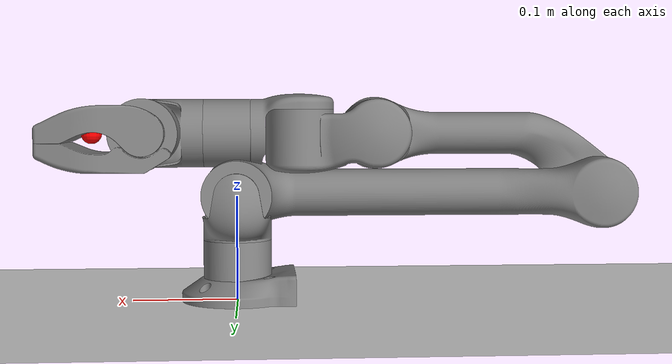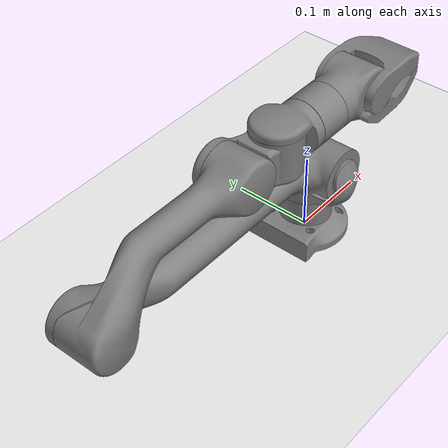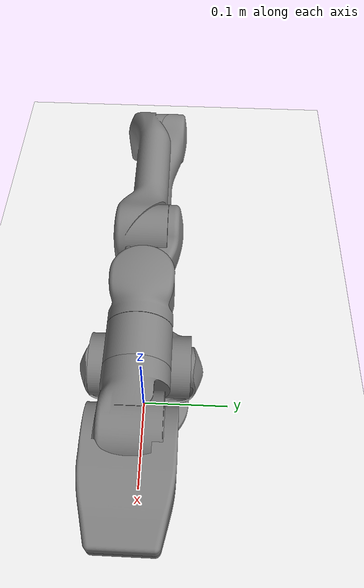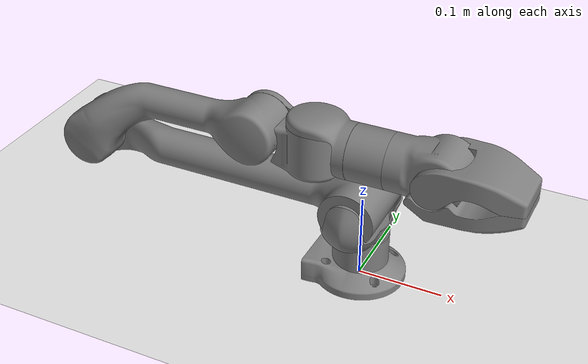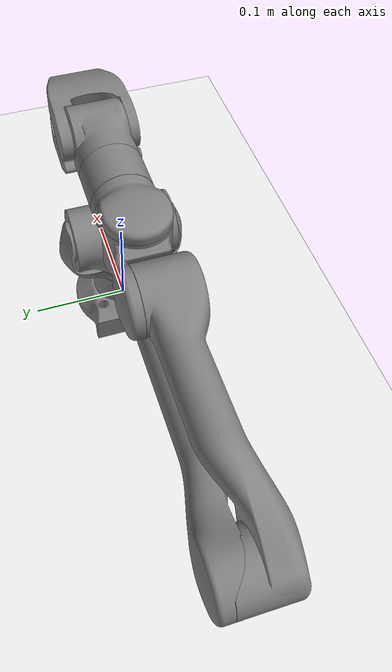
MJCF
<mujoco model="z1 scene">
      <include file="z1.xml"/>

      <statistic center="0 0 0.1" extent="0.8"/>

      <visual>
            <headlight diffuse="0.4 0.4 0.4" ambient="0.25 0.25 0.25" specular="0.25 0.25 0.25"/>
            <rgba haze="0.99 0.99 0.99 1"/>
            <global azimuth="-130" elevation="-20"/>
      </visual>
      <asset>
            <texture
                  type="skybox"
                  builtin="gradient"
                  rgb1="0.99 0.99 0.99"
                  rgb2="0.99 0.99 0.99"
                  width="512"
                  height="3072"
            />
            <texture
                  type="2d"
                  name="groundplane"
                  builtin="checker"
                  mark="edge"
                  rgb1="0.93 0.93 0.93"
                  rgb2="0.93 0.93 0.93"
                  markrgb="0 0 0"
                  width="250"
                  height="250"
            />
            <material name="groundplane" texture="groundplane" texuniform="true" texrepeat="5 5" reflectance="0.0"/>

      </asset>

      <worldbody>
            <light pos="0 0 5.0" dir="0 0 -1" directional="true" castshadow="false"/>

            <geom name="floor" size="0 0 0.05" type="plane" material="groundplane"/>
      </worldbody>
</mujoco>

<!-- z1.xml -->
<mujoco model="z1">
  <compiler angle="radian"/>

  <option integrator="implicitfast" timestep="0.005"/>

  <default>
    <default class="z1">
      <default class="visual">
        <geom type="mesh" group="2" contype="0" conaffinity="0"/>
      </default>
      <default class="collision">
        <geom type="cylinder" group="3" mass="0" density="0"/>
        <default class="z1_gripper_stator_collision">
          <geom pos="0.051 0 0" type="mesh"/>
        </default>
        <default class="z1_gripper_stator_pad_collision_1">
          <geom type="box" size="0.014 0.015 0.004" pos="0.186 -0.015 -0.0125"/>
        </default>
        <default class="z1_gripper_stator_pad_collision_2">
          <geom type="box" size="0.014 0.015 0.004" pos="0.186 0.015 -0.0125"/>
        </default>
        <default class="z1_gripper_mover_collision">
          <geom type="mesh"/>
        </default>
        <default class="z1_gripper_mover_pad_collision_1">
          <geom type="box" size="0.014 0.015 0.004" pos="0.086 -0.015 -0.0055"/>
        </default>
        <default class="z1_gripper_mover_pad_collision_2">
          <geom type="box" size="0.014 0.015 0.004" pos="0.086 0.015 -0.0055"/>
        </default>
      </default>
    </default>
  </default>

  <asset>
    <mesh file="assets/z1_Link00.stl"/>
    <mesh file="assets/z1_Link01.stl"/>
    <mesh file="assets/z1_Link02.stl"/>
    <mesh file="assets/z1_Link03.stl"/>
    <mesh file="assets/z1_Link04.stl"/>
    <mesh file="assets/z1_Link05.stl"/>
    <mesh file="assets/z1_Link06.stl"/>
    <mesh file="assets/z1_GripperStator.stl"/>
    <mesh file="assets/z1_GripperStator_col_1.stl"/>
    <mesh file="assets/z1_GripperStator_col_2.stl"/>
    <mesh file="assets/z1_GripperStator_col_3.stl"/>
    <mesh file="assets/z1_GripperStator_col_4.stl"/>
    <mesh file="assets/z1_GripperStator_col_5.stl"/>
    <mesh file="assets/z1_GripperStator_col_6.stl"/>
    <mesh file="assets/z1_GripperMover.stl"/>
    <mesh file="assets/z1_GripperMover_col_1.stl"/>
    <mesh file="assets/z1_GripperMover_col_2.stl"/>
    <mesh file="assets/z1_GripperMover_col_3.stl"/>
    <mesh file="assets/z1_GripperMover_col_4.stl"/>
    <mesh file="assets/z1_GripperMover_col_5.stl"/>
  </asset>

  <worldbody>
    <body name="link00" childclass="z1" pos="0 0 0">
      <inertial pos="-0.00334984 -0.00013615 0.0249584" quat="-0.00692194 0.682592 0.00133293 0.730766" mass="0.472475"
        diaginertia="0.000531375 0.000415207 0.000378658"/>
      <geom class="visual" mesh="z1_Link00"/>
      <geom size="0.0325 0.0255" pos="0 0 0.0255" class="collision"/>
      <body name="link01" pos="0 0 0.0585">
        <inertial pos="2.47e-06 -0.00025198 0.0231717" quat="0.708578 0.705633 0.000281462 -0.000355927" mass="0.673326"
          diaginertia="0.00128328 0.000839362 0.000719308"/>
        <joint name="joint1" axis="0 0 1" range="-2.61799 2.61799" armature="0.1513" frictionloss="2.1582" damping="4.6844"/>
        <geom class="visual" mesh="z1_Link01"/>
        <body name="link02" pos="0 0 0.045">
          <inertial pos="-0.110126 0.00240029 0.00158266" quat="0.00748058 0.707092 -0.0114473 0.70699" mass="1.19132"
            diaginertia="0.0246612 0.0243113 0.00100468"/>
          <joint name="joint2" axis="0 1 0" range="0 2.96706" armature="0.0569" frictionloss="4.4866" damping="7.0000"/>
          <geom class="visual" mesh="z1_Link02"/>
          <geom size="0.0325 0.051" quat="1 1 0 0" class="collision"/>
          <geom size="0.0225 0.1175" pos="-0.1625 0 0" quat="1 0 1 0" class="collision"/>
          <geom size="0.0325 0.0255" pos="-0.35 0 0" quat="1 1 0 0" class="collision"/>
          <body name="link03" pos="-0.35 0 0">
            <inertial pos="0.106092 -0.00541815 0.0347638" quat="0.540557 0.443575 0.426319 0.573839" mass="0.839409"
              diaginertia="0.00954365 0.00938711 0.000558432"/>
            <joint name="joint3" axis="0 1 0" range="-2.87979 0" armature="0.1984" frictionloss="2.6990" damping="3.4930"/>
            <geom class="visual" mesh="z1_Link03"/>
            <geom size="0.02 0.058" pos="0.128 0 0.055" quat="1 0 1 0" class="collision"/>
            <geom size="0.0325 0.0295" pos="0.2205 0 0.055" quat="0.5 -0.5 0.5 0.5" class="collision"/>
            <body name="link04" pos="0.218 0 0.057">
              <inertial pos="0.0436668 0.00364738 -0.00170192" quat="0.0390835 0.726445 -0.0526787 0.684087"
                mass="0.564046" diaginertia="0.000981656 0.00094053 0.000302655"/>
              <joint name="joint4" axis="0 1 0" range="-1.51844 1.51844" armature="0.0099" frictionloss="2.7345" damping="5.0049"/>
              <geom class="visual" mesh="z1_Link04"/>
              <geom size="0.0325 0.0335" pos="0.072 0 0" class="collision"/>
              <body name="link05" pos="0.07 0 0">
                <inertial pos="0.0312153 0 0.00646316" quat="0.462205 0.535209 0.53785 0.45895" mass="0.389385"
                  diaginertia="0.000558961 0.000547317 0.000167332"/>
                <joint name="joint5" axis="0 0 1" range="-1.3439 1.3439" armature="0.0865" frictionloss="2.6727" damping="4.4578"/>
                <geom class="visual" mesh="z1_Link05"/>
                <body name="link06" pos="0.0492 0 0">
                  <inertial pos="0.0241569 -0.00017355 -0.00143876" quat="0.998779 0.0457735 -0.00663717 0.0173548"
                    mass="0.288758" diaginertia="0.00018333 0.000147464 0.000146786"/>
                  <joint name="joint6" axis="1 0 0" range="-2.79253 2.79253" armature="0.1382" frictionloss="2.1069" damping="4.2921"/>
                  <geom class="visual" mesh="z1_Link06"/>
                  <geom size="0.0325 0.0255" pos="0.0255 0 0" quat="1 0 1 0" class="collision"/>
                  <site name="attachment_site" size="0.01" pos="0.15 0 0" rgba="1 0 0 1" group="1"/>

                  <geom pos="0.051 0 0" type="mesh" mesh="z1_GripperStator" class="visual"/>
                  <geom class="z1_gripper_stator_collision" mesh="z1_GripperStator_col_1"/>
                  <geom class="z1_gripper_stator_collision" mesh="z1_GripperStator_col_2"/>
                  <geom class="z1_gripper_stator_collision" mesh="z1_GripperStator_col_3"/>
                  <geom class="z1_gripper_stator_collision" mesh="z1_GripperStator_col_4"/>
                  <geom class="z1_gripper_stator_collision" mesh="z1_GripperStator_col_5"/>
                  <geom class="z1_gripper_stator_collision" mesh="z1_GripperStator_col_6"/>
                  <geom class="z1_gripper_stator_pad_collision_1"/>
                  <geom class="z1_gripper_stator_pad_collision_2"/>
                  <body name="gripperMover" pos="0.1 0 0">
                    <inertial pos="0.0132063 0.00476708 0.00380534" quat="0.0631093 0.669067 -0.0615783 0.737953"
                      mass="0.276213" diaginertia="0.000359044 0.000270888 0.000172378"/>
                    <joint name="jointGripper" axis="0 1 0" range="-1.51844 0.05" armature="0.0445" frictionloss="5.9808" damping="2.3799"/>
                    <geom type="mesh" mesh="z1_GripperMover" class="visual"/>
                    <geom class="z1_gripper_mover_collision" mesh="z1_GripperMover_col_1"/>
                    <geom class="z1_gripper_mover_collision" mesh="z1_GripperMover_col_2"/>
                    <geom class="z1_gripper_mover_collision" mesh="z1_GripperMover_col_3"/>
                    <geom class="z1_gripper_mover_collision" mesh="z1_GripperMover_col_4"/>
                    <geom class="z1_gripper_mover_collision" mesh="z1_GripperMover_col_5"/>
                    <geom class="z1_gripper_mover_pad_collision_1"/>
                    <geom class="z1_gripper_mover_pad_collision_2"/>
                  </body>
                </body>
              </body>
            </body>
          </body>
        </body>
      </body>
    </body>
  </worldbody>

  <actuator>
      <motor name="motor1"   joint="joint1" ctrlrange="-30.0 30.0"/>
      <motor name="motor2"   joint="joint2" ctrlrange="-60.0 60.0"/>
      <motor name="motor3"   joint="joint3" ctrlrange="-30.0 30.0"/>
      <motor name="motor4"   joint="joint4" ctrlrange="-30.0 30.0"/>
      <motor name="motor5"   joint="joint5" ctrlrange="-30.0 30.0"/>
      <motor name="motor6"   joint="joint6" ctrlrange="-30.0 30.0"/>
      <motor name="motorGripper" joint="jointGripper" ctrlrange="-10 10"/>
  </actuator>

  <sensor>
    <jointpos name="joint1_pos" joint="joint1"/>
    <jointpos name="joint2_pos" joint="joint2"/>
    <jointpos name="joint3_pos" joint="joint3"/>
    <jointpos name="joint4_pos" joint="joint4"/>
    <jointpos name="joint5_pos" joint="joint5"/>
    <jointpos name="joint6_pos" joint="joint6"/>
    <jointpos name="jointGripper_pos" joint="jointGripper"/>
  </sensor>

  <keyframe>
    <key name="home" qpos="0 0. -0. -0. 0 0 0.06" ctrl="0 0. -0. -0. 0 0 0"/>
    <key name="sys_id_1" qpos="0.2 0.2 -0.5 0.2 0.2 0.2 0.1" ctrl="0 0. 0. 0. 0 0 0"/>
    <key name="sys_id_2" qpos="0.9 0.9 -1.0 0.9 0.9 0.9 -1.0" ctrl="0 0. 0. 0. 0 0 0"/>
  </keyframe>
</mujoco>
